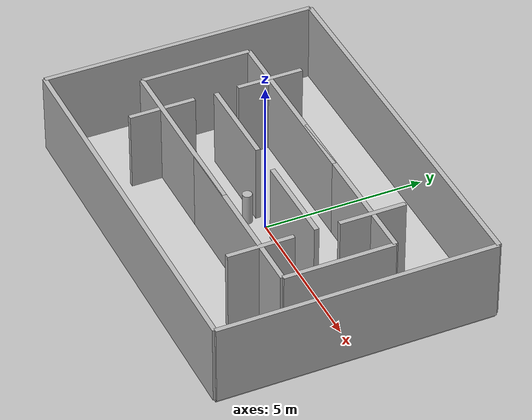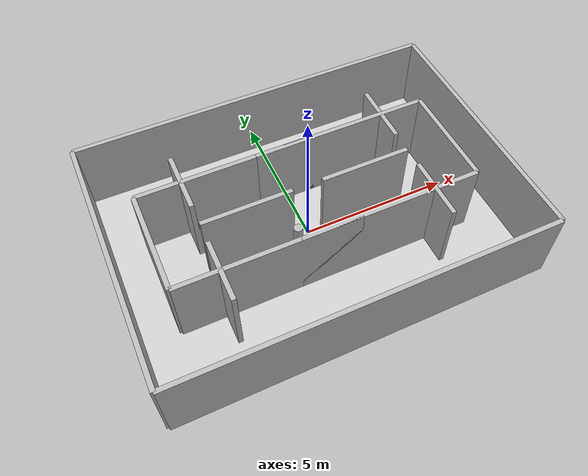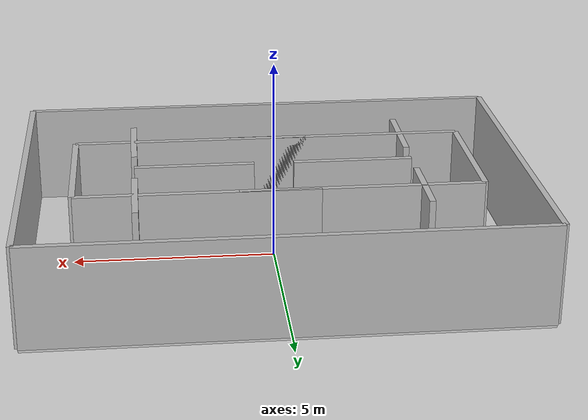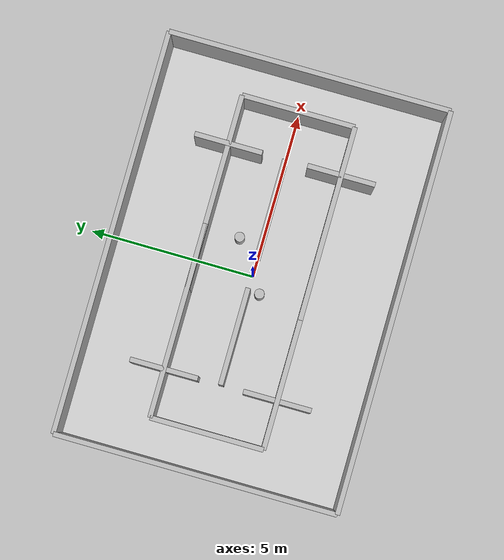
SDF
<?xml version="1.0" ?>
<sdf version="1.7">

  <world name="hospital_world">

    <light name="sun" type="directional">
      <cast_shadows>true</cast_shadows>
      <pose>0 0 10 0 0 0</pose>
      <diffuse>0.8 0.8 0.8 1</diffuse>
      <specular>0.2 0.2 0.2 1</specular>
      <direction>-0.5 0.1 -0.9</direction>
    </light>

    <!-- Ground Plane -->
    <model name="ground_plane">
      <static>true</static>
      <link name="link">
        <collision name="collision">
          <geometry>
            <box>
              <size>12.2000 8.5500 0.1000</size>
            </box>
          </geometry>
        </collision>

        <visual name="visual">
          <geometry>
            <box>
              <size>12.2000 8.5500 0.1000</size>
            </box>
          </geometry>

          <material>
            <ambient>0.8 0.8 0.8 1</ambient>
            <diffuse>0.8 0.8 0.8 1</diffuse>
          </material>
        </visual>
      </link>

      <pose>0.0000 0.0000 -0.0500 0.0000 0.0000 0.0000</pose>
    </model>

    <!-- North Wall -->
    <model name="wall_north">
      <static>true</static>
      <pose>0.0000 4.2750 1.2500 0.0000 0.0000 0.0000</pose>

      <link name="link">
        <collision name="collision">
          <geometry>
            <box>
              <size>12.2000 0.1500 2.5000</size>
            </box>
          </geometry>
        </collision>

        <visual name="visual">
          <geometry>
            <box>
              <size>12.2000 0.1500 2.5000</size>
            </box>
          </geometry>
        </visual>
      </link>
    </model>

    <!-- South Wall -->
    <model name="wall_south">
      <static>true</static>
      <pose>0.0000 -4.2750 1.2500 0.0000 0.0000 0.0000</pose>

      <link name="link">
        <collision name="collision">
          <geometry>
            <box>
              <size>12.2000 0.1500 2.5000</size>
            </box>
          </geometry>
        </collision>

        <visual name="visual">
          <geometry>
            <box>
              <size>12.2000 0.1500 2.5000</size>
            </box>
          </geometry>
        </visual>
      </link>
    </model>

    <!-- East Wall -->
    <model name="wall_east">
      <static>true</static>
      <pose>6.1000 0.0000 1.2500 0.0000 0.0000 0.0000</pose>

      <link name="link">
        <collision name="collision">
          <geometry>
            <box>
              <size>0.1500 8.5500 2.5000</size>
            </box>
          </geometry>
        </collision>

        <visual name="visual">
          <geometry>
            <box>
              <size>0.1500 8.5500 2.5000</size>
            </box>
          </geometry>
        </visual>
      </link>
    </model>

    <!-- West Wall -->
    <model name="wall_west">
      <static>true</static>
      <pose>-6.1000 0.0000 1.2500 0.0000 0.0000 0.0000</pose>

      <link name="link">
        <collision name="collision">
          <geometry>
            <box>
              <size>0.1500 8.5500 2.5000</size>
            </box>
          </geometry>
        </collision>

        <visual name="visual">
          <geometry>
            <box>
              <size>0.1500 8.5500 2.5000</size>
            </box>
          </geometry>
        </visual>
      </link>
    </model>

    <!-- ROOM 1 BOTTOM WALL WITH DOOR -->
    <model name="room1_left">
    <static>true</static>
    <pose>-1.9520 1.7100 1.2500 0.0000 0.0000 0.0000</pose>
    <link name="link">
        <collision name="collision">
        <geometry><box><size>5.8560 0.1500 2.5000</size></box></geometry>
        </collision>
        <visual name="visual">
        <geometry><box><size>5.8560 0.1500 2.5000</size></box></geometry>
        </visual>
    </link>
    </model>

    <model name="room1_right">
    <static>true</static>
    <pose>1.9520 1.7100 1.2500 0.0000 0.0000 0.0000</pose>
    <link name="link">
        <collision name="collision">
        <geometry><box><size>5.8560 0.1500 2.5000</size></box></geometry>
        </collision>
        <visual name="visual">
        <geometry><box><size>5.8560 0.1500 2.5000</size></box></geometry>
        </visual>
    </link>
    </model>

    <!-- LEFT CORRIDOR WALL -->
    <model name="left_corridor_top">
    <static>true</static>
    <pose>-3.4160 1.7100 1.2500 0.0000 0.0000 0.0000</pose>
    <link name="link">
        <collision name="collision">
        <geometry><box><size>0.1500 2.0520 2.5000</size></box></geometry>
        </collision>
        <visual name="visual">
        <geometry><box><size>0.1500 2.0520 2.5000</size></box></geometry>
        </visual>
    </link>
    </model>

    <model name="left_corridor_bottom">
    <static>true</static>
    <pose>-3.4160 -1.7100 1.2500 0.0000 0.0000 0.0000</pose>
    <link name="link">
        <collision name="collision">
        <geometry><box><size>0.1500 2.0520 2.5000</size></box></geometry>
        </collision>
        <visual name="visual">
        <geometry><box><size>0.1500 2.0520 2.5000</size></box></geometry>
        </visual>
    </link>
    </model>

    <!-- RIGHT CORRIDOR WALL -->
    <model name="right_corridor_top">
    <static>true</static>
    <pose>3.4160 1.7100 1.2500 0.0000 0.0000 0.0000</pose>
    <link name="link">
        <collision name="collision">
        <geometry><box><size>0.1500 2.0520 2.5000</size></box></geometry>
        </collision>
        <visual name="visual">
        <geometry><box><size>0.1500 2.0520 2.5000</size></box></geometry>
        </visual>
    </link>
    </model>

    <model name="right_corridor_bottom">
    <static>true</static>
    <pose>3.4160 -1.7100 1.2500 0.0000 0.0000 0.0000</pose>
    <link name="link">
        <collision name="collision">
        <geometry><box><size>0.1500 2.0520 2.5000</size></box></geometry>
        </collision>
        <visual name="visual">
        <geometry><box><size>0.1500 2.0520 2.5000</size></box></geometry>
        </visual>
    </link>
    </model>

    <!-- ROOM 4 / ROOM 5 TOP WALL WITH DOOR -->
    <model name="bottom_left">
    <static>true</static>
    <pose>-1.9520 -1.7100 1.2500 0.0000 0.0000 0.0000</pose>
    <link name="link">
        <collision name="collision">
        <geometry><box><size>5.8560 0.1500 2.5000</size></box></geometry>
        </collision>
        <visual name="visual">
        <geometry><box><size>5.8560 0.1500 2.5000</size></box></geometry>
        </visual>
    </link>
    </model>

    <model name="bottom_right">
    <static>true</static>
    <pose>1.9520 -1.7100 1.2500 0.0000 0.0000 0.0000</pose>
    <link name="link">
        <collision name="collision">
        <geometry><box><size>5.8560 0.1500 2.5000</size></box></geometry>
        </collision>
        <visual name="visual">
        <geometry><box><size>5.8560 0.1500 2.5000</size></box></geometry>
        </visual>
    </link>
    </model>

    <!-- ROOM 2 LEFT WALL -->
    <model name="room2_separator">
    <static>true</static>
    <pose>-4.8800 0.0000 1.2500 0.0000 0.0000 0.0000</pose>
    <link name="link">
        <collision name="collision">
        <geometry><box><size>0.1500 3.4200 2.5000</size></box></geometry>
        </collision>
        <visual name="visual">
        <geometry><box><size>0.1500 3.4200 2.5000</size></box></geometry>
        </visual>
    </link>
    </model>

    <!-- ROOM 3 RIGHT WALL -->
    <model name="room3_separator">
    <static>true</static>
    <pose>4.8800 0.0000 1.2500 0.0000 0.0000 0.0000</pose>
    <link name="link">
        <collision name="collision">
        <geometry><box><size>0.1500 3.4200 2.5000</size></box></geometry>
        </collision>
        <visual name="visual">
        <geometry><box><size>0.1500 3.4200 2.5000</size></box></geometry>
        </visual>
    </link>
    </model>

    <!-- OBSTACLE 1 -->
    <model name="obstacle_1">
    <static>true</static>
    <pose>-0.4880 -0.3420 0.5000 0.0000 0.0000 0.0000</pose>
    <link name="link">
        <collision name="collision">
        <geometry>
            <cylinder>
            <radius>0.1500</radius>
            <length>1.0</length>
            </cylinder>
        </geometry>
        </collision>
        <visual name="visual">
        <geometry>
            <cylinder>
            <radius>0.1500</radius>
            <length>1.0</length>
            </cylinder>
        </geometry>
        </visual>
    </link>
    </model>

    <!-- OBSTACLE 2 -->
    <model name="obstacle_2">
    <static>true</static>
    <pose>0.9760 0.6840 0.5000 0.0000 0.0000 0.0000</pose>
    <link name="link">
        <collision name="collision">
        <geometry>
            <cylinder>
            <radius>0.1500</radius>
            <length>1.0</length>
            </cylinder>
        </geometry>
        </collision>
        <visual name="visual">
        <geometry>
            <cylinder>
            <radius>0.1500</radius>
            <length>1.0</length>
            </cylinder>
        </geometry>
        </visual>
    </link>
    </model>

    <model name="middle_left">
    <static>true</static>
    <pose>-1.9520 0.0000 1.2500 0.0000 0.0000 0.0000</pose>

    <link name="link">
        <collision name="collision">
        <geometry>
            <box>
            <size>2.9280 0.1500 2.5000</size>
            </box>
        </geometry>
        </collision>

        <visual name="visual">
        <geometry>
            <box>
            <size>2.9280 0.1500 2.5000</size>
            </box>
        </geometry>
        </visual>
    </link>
    </model>

    <model name="middle_right">
    <static>true</static>
    <pose>1.9520 0.0000 1.2500 0.0000 0.0000 0.0000</pose>

    <link name="link">
        <collision name="collision">
        <geometry>
            <box>
            <size>2.9280 0.1500 2.5000</size>
            </box>
        </geometry>
        </collision>

        <visual name="visual">
        <geometry>
            <box>
            <size>2.9280 0.1500 2.5000</size>
            </box>
        </geometry>
        </visual>
    </link>
    </model>

  </world>

</sdf>
